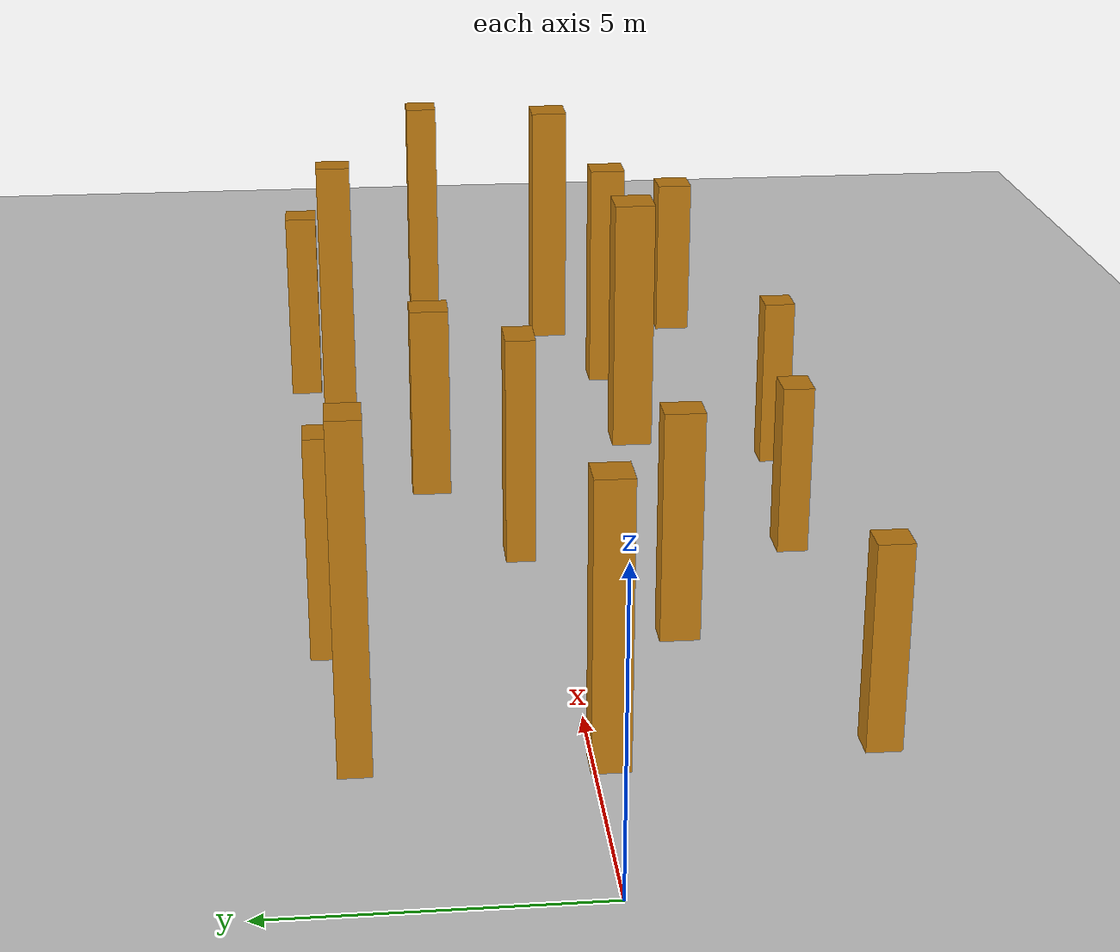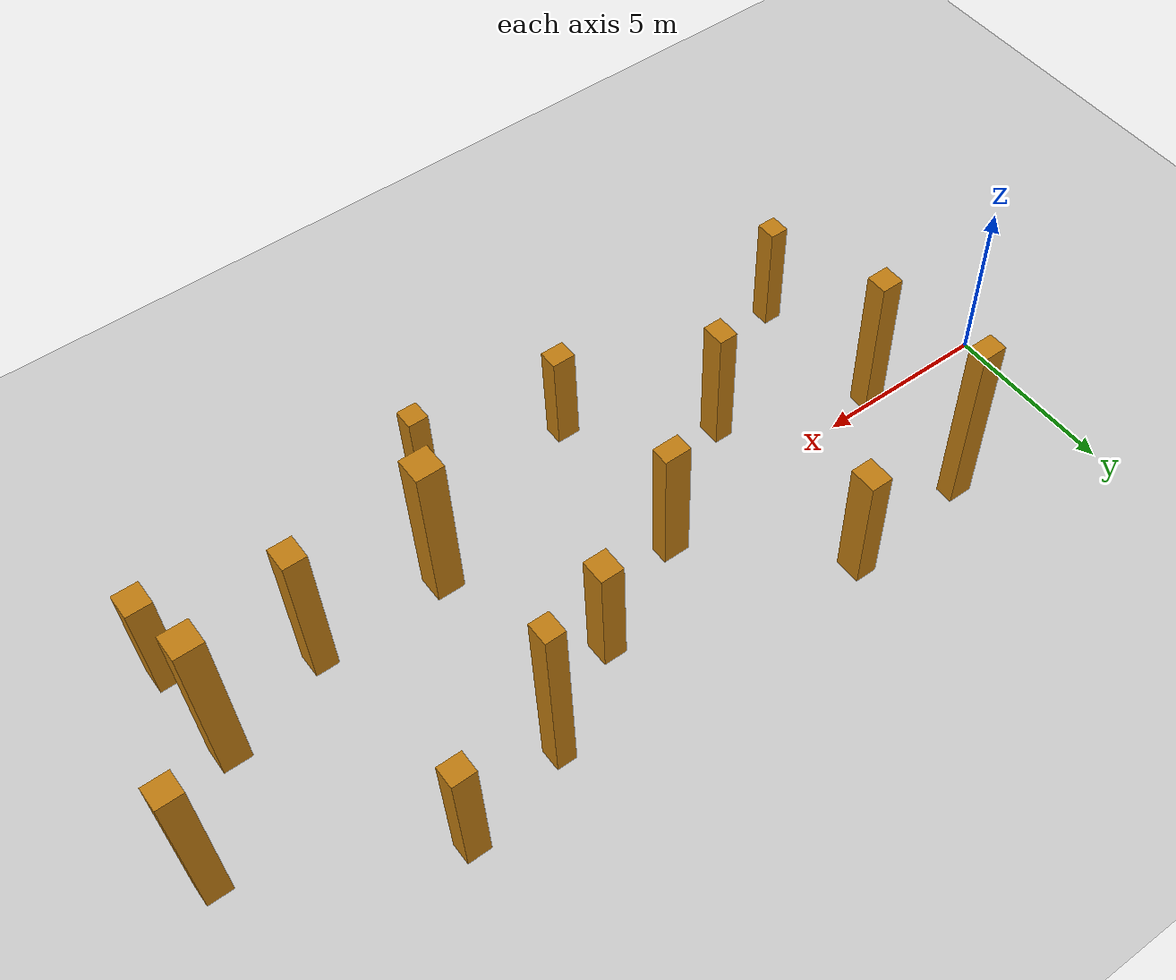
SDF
<sdf version="1.7">
 <world name="default">
  <light name="sun" type="directional">
   <pose>0 0 10 0 -0 0</pose>
   <diffuse>0.8 0.8 0.8 1</diffuse>
   <specular>0.2 0.2 0.2 1</specular>
   <attenuation>
    <range>1000</range>
    <constant>0.9</constant>
    <linear>0.01</linear>
    <quadratic>0.001</quadratic>
   </attenuation>
   <direction>-0.5 0.1 -0.9</direction>
   <spot><inner_angle>0</inner_angle><outer_angle>0</outer_angle><falloff>0</falloff></spot>
  </light>
  <model name="ground_plane">
   <static>1</static>
   <link name="link">
    <collision name="collision">
     <geometry><plane><normal>0 0 1</normal><size>100 100</size></plane></geometry>
     <surface>
      <contact><collide_bitmask>65535</collide_bitmask></contact>
      <friction><ode><mu>100</mu><mu2>50</mu2></ode></friction>
     </surface>
    </collision>
    <visual name="visual">
     <cast_shadows>0</cast_shadows>
     <geometry><plane><normal>0 0 1</normal><size>100 100</size></plane></geometry>
     <material>
      <script><uri>file://media/materials/scripts/gazebo.material</uri><name>Gazebo/Grey</name></script>
     </material>
    </visual>
   </link>
  </model>
  <gravity>0 0 -9.8</gravity>
  <magnetic_field>6e-06 2.3e-05 -4.2e-05</magnetic_field>
  <atmosphere type="adiabatic"/>
  <physics type="ode">
   <max_step_size>0.001</max_step_size>
   <real_time_factor>1</real_time_factor>
   <real_time_update_rate>1000</real_time_update_rate>
  </physics>
  <scene><ambient>0.4 0.4 0.4 1</ambient><background>0.7 0.7 0.7 1</background><shadows>1</shadows></scene>
  <spherical_coordinates>
   <surface_model>EARTH_WGS84</surface_model>
   <latitude_deg>0</latitude_deg>
   <longitude_deg>0</longitude_deg>
   <elevation>0</elevation>
   <heading_deg>0</heading_deg>
  </spherical_coordinates>
  <plugin name="gazebo_octomap" filename="libBuildOctomapPlugin.so"/>
  <model name="model0">
   <link name="link">
    <inertial>
     <mass>1</mass>
     <inertia>
      <ixx>0.166667</ixx>
      <ixy>0</ixy>
      <ixz>0</ixz>
      <iyy>0.166667</iyy>
      <iyz>0</iyz>
      <izz>0.166667</izz>
     </inertia>
    </inertial>
    <visual name="visual">
     <geometry><box><size>0.5413186644177945 0.6806908127863589 4.045240389018</size></box></geometry>
     <material>
      <script><name>Gazebo/Grey</name><uri>file://media/materials/scripts/gazebo.material</uri></script>
      <shader type="pixel"><normal_map>__default__</normal_map></shader>
      <ambient>0.757 0.49 0.067 1</ambient>
      <diffuse>0.7 0.7 0.7 1</diffuse>
      <specular>0.01 0.01 0.01 1</specular>
      <emissive>0 0 0 1</emissive>
     </material>
    </visual>
    <collision name="collision">
     <geometry><box><size>0.5413186644177945 0.6806908127863589 4.045240389018</size></box></geometry>
     <surface>
      <friction>
       <ode><mu>1</mu><mu2>1</mu2><fdir1>0 0 0</fdir1><slip1>0</slip1><slip2>0</slip2></ode>
       <torsional>
        <coefficient>1</coefficient>
        <patch_radius>0</patch_radius>
        <surface_radius>0</surface_radius>
        <use_patch_radius>1</use_patch_radius>
        <ode><slip>0</slip></ode>
       </torsional>
      </friction>
      <bounce><restitution_coefficient>0</restitution_coefficient><threshold>1e+06</threshold></bounce>
      <contact>
       <collide_without_contact>0</collide_without_contact>
       <collide_without_contact_bitmask>1</collide_without_contact_bitmask>
       <collide_bitmask>1</collide_bitmask>
       <ode>
        <soft_cfm>0</soft_cfm>
        <soft_erp>0.2</soft_erp>
        <kp>1e+13</kp>
        <kd>1</kd>
        <max_vel>0.01</max_vel>
        <min_depth>0</min_depth>
       </ode>
       <bullet>
        <split_impulse>1</split_impulse>
        <split_impulse_penetration_threshold>-0.01</split_impulse_penetration_threshold>
        <soft_cfm>0</soft_cfm>
        <soft_erp>0.2</soft_erp>
        <kp>1e+13</kp>
        <kd>1</kd>
       </bullet>
      </contact>
     </surface>
    </collision>
   </link>
   <static>0</static>
   <pose>7.636801785307956 -1.8812816014844325 2.022620194509 0.0 0.0 0.0</pose>
  </model>
  <model name="model1">
   <link name="link">
    <inertial>
     <mass>1</mass>
     <inertia>
      <ixx>0.166667</ixx>
      <ixy>0</ixy>
      <ixz>0</ixz>
      <iyy>0.166667</iyy>
      <iyz>0</iyz>
      <izz>0.166667</izz>
     </inertia>
    </inertial>
    <visual name="visual">
     <geometry><box><size>0.6609942166343876 0.7114339799958076 4.678055544154564</size></box></geometry>
     <material>
      <script><name>Gazebo/Grey</name><uri>file://media/materials/scripts/gazebo.material</uri></script>
      <shader type="pixel"><normal_map>__default__</normal_map></shader>
      <ambient>0.757 0.49 0.067 1</ambient>
      <diffuse>0.7 0.7 0.7 1</diffuse>
      <specular>0.01 0.01 0.01 1</specular>
      <emissive>0 0 0 1</emissive>
     </material>
    </visual>
    <collision name="collision">
     <geometry><box><size>0.6609942166343876 0.7114339799958076 4.678055544154564</size></box></geometry>
     <surface>
      <friction>
       <ode><mu>1</mu><mu2>1</mu2><fdir1>0 0 0</fdir1><slip1>0</slip1><slip2>0</slip2></ode>
       <torsional>
        <coefficient>1</coefficient>
        <patch_radius>0</patch_radius>
        <surface_radius>0</surface_radius>
        <use_patch_radius>1</use_patch_radius>
        <ode><slip>0</slip></ode>
       </torsional>
      </friction>
      <bounce><restitution_coefficient>0</restitution_coefficient><threshold>1e+06</threshold></bounce>
      <contact>
       <collide_without_contact>0</collide_without_contact>
       <collide_without_contact_bitmask>1</collide_without_contact_bitmask>
       <collide_bitmask>1</collide_bitmask>
       <ode>
        <soft_cfm>0</soft_cfm>
        <soft_erp>0.2</soft_erp>
        <kp>1e+13</kp>
        <kd>1</kd>
        <max_vel>0.01</max_vel>
        <min_depth>0</min_depth>
       </ode>
       <bullet>
        <split_impulse>1</split_impulse>
        <split_impulse_penetration_threshold>-0.01</split_impulse_penetration_threshold>
        <soft_cfm>0</soft_cfm>
        <soft_erp>0.2</soft_erp>
        <kp>1e+13</kp>
        <kd>1</kd>
       </bullet>
      </contact>
     </surface>
    </collision>
   </link>
   <static>0</static>
   <pose>20.017672413040636 -2.1298050413349134 2.339027772077282 0.0 0.0 0.0</pose>
  </model>
  <model name="model2">
   <link name="link">
    <inertial>
     <mass>1</mass>
     <inertia>
      <ixx>0.166667</ixx>
      <ixy>0</ixy>
      <ixz>0</ixz>
      <iyy>0.166667</iyy>
      <iyz>0</iyz>
      <izz>0.166667</izz>
     </inertia>
    </inertial>
    <visual name="visual">
     <geometry><box><size>0.5720434221305088 0.5808723309932609 3.274546043499368</size></box></geometry>
     <material>
      <script><name>Gazebo/Grey</name><uri>file://media/materials/scripts/gazebo.material</uri></script>
      <shader type="pixel"><normal_map>__default__</normal_map></shader>
      <ambient>0.757 0.49 0.067 1</ambient>
      <diffuse>0.7 0.7 0.7 1</diffuse>
      <specular>0.01 0.01 0.01 1</specular>
      <emissive>0 0 0 1</emissive>
     </material>
    </visual>
    <collision name="collision">
     <geometry><box><size>0.5720434221305088 0.5808723309932609 3.274546043499368</size></box></geometry>
     <surface>
      <friction>
       <ode><mu>1</mu><mu2>1</mu2><fdir1>0 0 0</fdir1><slip1>0</slip1><slip2>0</slip2></ode>
       <torsional>
        <coefficient>1</coefficient>
        <patch_radius>0</patch_radius>
        <surface_radius>0</surface_radius>
        <use_patch_radius>1</use_patch_radius>
        <ode><slip>0</slip></ode>
       </torsional>
      </friction>
      <bounce><restitution_coefficient>0</restitution_coefficient><threshold>1e+06</threshold></bounce>
      <contact>
       <collide_without_contact>0</collide_without_contact>
       <collide_without_contact_bitmask>1</collide_without_contact_bitmask>
       <collide_bitmask>1</collide_bitmask>
       <ode>
        <soft_cfm>0</soft_cfm>
        <soft_erp>0.2</soft_erp>
        <kp>1e+13</kp>
        <kd>1</kd>
        <max_vel>0.01</max_vel>
        <min_depth>0</min_depth>
       </ode>
       <bullet>
        <split_impulse>1</split_impulse>
        <split_impulse_penetration_threshold>-0.01</split_impulse_penetration_threshold>
        <soft_cfm>0</soft_cfm>
        <soft_erp>0.2</soft_erp>
        <kp>1e+13</kp>
        <kd>1</kd>
       </bullet>
      </contact>
     </surface>
    </collision>
   </link>
   <static>0</static>
   <pose>15.107402392266678 -4.906412118119991 1.637273021749684 0.0 0.0 0.0</pose>
  </model>
  <model name="model3">
   <link name="link">
    <inertial>
     <mass>1</mass>
     <inertia>
      <ixx>0.166667</ixx>
      <ixy>0</ixy>
      <ixz>0</ixz>
      <iyy>0.166667</iyy>
      <iyz>0</iyz>
      <izz>0.166667</izz>
     </inertia>
    </inertial>
    <visual name="visual">
     <geometry><box><size>0.6708192028838414 0.5576836232366673 3.1343124077374678</size></box></geometry>
     <material>
      <script><name>Gazebo/Grey</name><uri>file://media/materials/scripts/gazebo.material</uri></script>
      <shader type="pixel"><normal_map>__default__</normal_map></shader>
      <ambient>0.757 0.49 0.067 1</ambient>
      <diffuse>0.7 0.7 0.7 1</diffuse>
      <specular>0.01 0.01 0.01 1</specular>
      <emissive>0 0 0 1</emissive>
     </material>
    </visual>
    <collision name="collision">
     <geometry><box><size>0.6708192028838414 0.5576836232366673 3.1343124077374678</size></box></geometry>
     <surface>
      <friction>
       <ode><mu>1</mu><mu2>1</mu2><fdir1>0 0 0</fdir1><slip1>0</slip1><slip2>0</slip2></ode>
       <torsional>
        <coefficient>1</coefficient>
        <patch_radius>0</patch_radius>
        <surface_radius>0</surface_radius>
        <use_patch_radius>1</use_patch_radius>
        <ode><slip>0</slip></ode>
       </torsional>
      </friction>
      <bounce><restitution_coefficient>0</restitution_coefficient><threshold>1e+06</threshold></bounce>
      <contact>
       <collide_without_contact>0</collide_without_contact>
       <collide_without_contact_bitmask>1</collide_without_contact_bitmask>
       <collide_bitmask>1</collide_bitmask>
       <ode>
        <soft_cfm>0</soft_cfm>
        <soft_erp>0.2</soft_erp>
        <kp>1e+13</kp>
        <kd>1</kd>
        <max_vel>0.01</max_vel>
        <min_depth>0</min_depth>
       </ode>
       <bullet>
        <split_impulse>1</split_impulse>
        <split_impulse_penetration_threshold>-0.01</split_impulse_penetration_threshold>
        <soft_cfm>0</soft_cfm>
        <soft_erp>0.2</soft_erp>
        <kp>1e+13</kp>
        <kd>1</kd>
       </bullet>
      </contact>
     </surface>
    </collision>
   </link>
   <static>0</static>
   <pose>10.96778164657982 -4.431210429715095 1.5671562038687339 0.0 0.0 0.0</pose>
  </model>
  <model name="model4">
   <link name="link">
    <inertial>
     <mass>1</mass>
     <inertia>
      <ixx>0.166667</ixx>
      <ixy>0</ixy>
      <ixz>0</ixz>
      <iyy>0.166667</iyy>
      <iyz>0</iyz>
      <izz>0.166667</izz>
     </inertia>
    </inertial>
    <visual name="visual">
     <geometry><box><size>0.6985149968707249 0.529175632266917 5.667273699548543</size></box></geometry>
     <material>
      <script><name>Gazebo/Grey</name><uri>file://media/materials/scripts/gazebo.material</uri></script>
      <shader type="pixel"><normal_map>__default__</normal_map></shader>
      <ambient>0.757 0.49 0.067 1</ambient>
      <diffuse>0.7 0.7 0.7 1</diffuse>
      <specular>0.01 0.01 0.01 1</specular>
      <emissive>0 0 0 1</emissive>
     </material>
    </visual>
    <collision name="collision">
     <geometry><box><size>0.6985149968707249 0.529175632266917 5.667273699548543</size></box></geometry>
     <surface>
      <friction>
       <ode><mu>1</mu><mu2>1</mu2><fdir1>0 0 0</fdir1><slip1>0</slip1><slip2>0</slip2></ode>
       <torsional>
        <coefficient>1</coefficient>
        <patch_radius>0</patch_radius>
        <surface_radius>0</surface_radius>
        <use_patch_radius>1</use_patch_radius>
        <ode><slip>0</slip></ode>
       </torsional>
      </friction>
      <bounce><restitution_coefficient>0</restitution_coefficient><threshold>1e+06</threshold></bounce>
      <contact>
       <collide_without_contact>0</collide_without_contact>
       <collide_without_contact_bitmask>1</collide_without_contact_bitmask>
       <collide_bitmask>1</collide_bitmask>
       <ode>
        <soft_cfm>0</soft_cfm>
        <soft_erp>0.2</soft_erp>
        <kp>1e+13</kp>
        <kd>1</kd>
        <max_vel>0.01</max_vel>
        <min_depth>0</min_depth>
       </ode>
       <bullet>
        <split_impulse>1</split_impulse>
        <split_impulse_penetration_threshold>-0.01</split_impulse_penetration_threshold>
        <soft_cfm>0</soft_cfm>
        <soft_erp>0.2</soft_erp>
        <kp>1e+13</kp>
        <kd>1</kd>
       </bullet>
      </contact>
     </surface>
    </collision>
   </link>
   <static>0</static>
   <pose>3.841803896338507 3.543169966341557 2.8336368497742717 0.0 0.0 0.0</pose>
  </model>
  <model name="model5">
   <link name="link">
    <inertial>
     <mass>1</mass>
     <inertia>
      <ixx>0.166667</ixx>
      <ixy>0</ixy>
      <ixz>0</ixz>
      <iyy>0.166667</iyy>
      <iyz>0</iyz>
      <izz>0.166667</izz>
     </inertia>
    </inertial>
    <visual name="visual">
     <geometry><box><size>0.6663495773236268 0.7262466717717364 3.683834411352261</size></box></geometry>
     <material>
      <script><name>Gazebo/Grey</name><uri>file://media/materials/scripts/gazebo.material</uri></script>
      <shader type="pixel"><normal_map>__default__</normal_map></shader>
      <ambient>0.757 0.49 0.067 1</ambient>
      <diffuse>0.7 0.7 0.7 1</diffuse>
      <specular>0.01 0.01 0.01 1</specular>
      <emissive>0 0 0 1</emissive>
     </material>
    </visual>
    <collision name="collision">
     <geometry><box><size>0.6663495773236268 0.7262466717717364 3.683834411352261</size></box></geometry>
     <surface>
      <friction>
       <ode><mu>1</mu><mu2>1</mu2><fdir1>0 0 0</fdir1><slip1>0</slip1><slip2>0</slip2></ode>
       <torsional>
        <coefficient>1</coefficient>
        <patch_radius>0</patch_radius>
        <surface_radius>0</surface_radius>
        <use_patch_radius>1</use_patch_radius>
        <ode><slip>0</slip></ode>
       </torsional>
      </friction>
      <bounce><restitution_coefficient>0</restitution_coefficient><threshold>1e+06</threshold></bounce>
      <contact>
       <collide_without_contact>0</collide_without_contact>
       <collide_without_contact_bitmask>1</collide_without_contact_bitmask>
       <collide_bitmask>1</collide_bitmask>
       <ode>
        <soft_cfm>0</soft_cfm>
        <soft_erp>0.2</soft_erp>
        <kp>1e+13</kp>
        <kd>1</kd>
        <max_vel>0.01</max_vel>
        <min_depth>0</min_depth>
       </ode>
       <bullet>
        <split_impulse>1</split_impulse>
        <split_impulse_penetration_threshold>-0.01</split_impulse_penetration_threshold>
        <soft_cfm>0</soft_cfm>
        <soft_erp>0.2</soft_erp>
        <kp>1e+13</kp>
        <kd>1</kd>
       </bullet>
      </contact>
     </surface>
    </collision>
   </link>
   <static>0</static>
   <pose>14.152163421730165 1.9255591821279285 1.8419172056761306 0.0 0.0 0.0</pose>
  </model>
  <model name="model6">
   <link name="link">
    <inertial>
     <mass>1</mass>
     <inertia>
      <ixx>0.166667</ixx>
      <ixy>0</ixy>
      <ixz>0</ixz>
      <iyy>0.166667</iyy>
      <iyz>0</iyz>
      <izz>0.166667</izz>
     </inertia>
    </inertial>
    <visual name="visual">
     <geometry><box><size>0.7078755981404992 0.6651884453455696 4.880756601264045</size></box></geometry>
     <material>
      <script><name>Gazebo/Grey</name><uri>file://media/materials/scripts/gazebo.material</uri></script>
      <shader type="pixel"><normal_map>__default__</normal_map></shader>
      <ambient>0.757 0.49 0.067 1</ambient>
      <diffuse>0.7 0.7 0.7 1</diffuse>
      <specular>0.01 0.01 0.01 1</specular>
      <emissive>0 0 0 1</emissive>
     </material>
    </visual>
    <collision name="collision">
     <geometry><box><size>0.7078755981404992 0.6651884453455696 4.880756601264045</size></box></geometry>
     <surface>
      <friction>
       <ode><mu>1</mu><mu2>1</mu2><fdir1>0 0 0</fdir1><slip1>0</slip1><slip2>0</slip2></ode>
       <torsional>
        <coefficient>1</coefficient>
        <patch_radius>0</patch_radius>
        <surface_radius>0</surface_radius>
        <use_patch_radius>1</use_patch_radius>
        <ode><slip>0</slip></ode>
       </torsional>
      </friction>
      <bounce><restitution_coefficient>0</restitution_coefficient><threshold>1e+06</threshold></bounce>
      <contact>
       <collide_without_contact>0</collide_without_contact>
       <collide_without_contact_bitmask>1</collide_without_contact_bitmask>
       <collide_bitmask>1</collide_bitmask>
       <ode>
        <soft_cfm>0</soft_cfm>
        <soft_erp>0.2</soft_erp>
        <kp>1e+13</kp>
        <kd>1</kd>
        <max_vel>0.01</max_vel>
        <min_depth>0</min_depth>
       </ode>
       <bullet>
        <split_impulse>1</split_impulse>
        <split_impulse_penetration_threshold>-0.01</split_impulse_penetration_threshold>
        <soft_cfm>0</soft_cfm>
        <soft_erp>0.2</soft_erp>
        <kp>1e+13</kp>
        <kd>1</kd>
       </bullet>
      </contact>
     </surface>
    </collision>
   </link>
   <static>0</static>
   <pose>25.02822167508521 1.591251131796767 2.4403783006320223 0.0 0.0 0.0</pose>
  </model>
  <model name="model7">
   <link name="link">
    <inertial>
     <mass>1</mass>
     <inertia>
      <ixx>0.166667</ixx>
      <ixy>0</ixy>
      <ixz>0</ixz>
      <iyy>0.166667</iyy>
      <iyz>0</iyz>
      <izz>0.166667</izz>
     </inertia>
    </inertial>
    <visual name="visual">
     <geometry><box><size>0.7251205967353784 0.739982085291362 3.4132364792786936</size></box></geometry>
     <material>
      <script><name>Gazebo/Grey</name><uri>file://media/materials/scripts/gazebo.material</uri></script>
      <shader type="pixel"><normal_map>__default__</normal_map></shader>
      <ambient>0.757 0.49 0.067 1</ambient>
      <diffuse>0.7 0.7 0.7 1</diffuse>
      <specular>0.01 0.01 0.01 1</specular>
      <emissive>0 0 0 1</emissive>
     </material>
    </visual>
    <collision name="collision">
     <geometry><box><size>0.7251205967353784 0.739982085291362 3.4132364792786936</size></box></geometry>
     <surface>
      <friction>
       <ode><mu>1</mu><mu2>1</mu2><fdir1>0 0 0</fdir1><slip1>0</slip1><slip2>0</slip2></ode>
       <torsional>
        <coefficient>1</coefficient>
        <patch_radius>0</patch_radius>
        <surface_radius>0</surface_radius>
        <use_patch_radius>1</use_patch_radius>
        <ode><slip>0</slip></ode>
       </torsional>
      </friction>
      <bounce><restitution_coefficient>0</restitution_coefficient><threshold>1e+06</threshold></bounce>
      <contact>
       <collide_without_contact>0</collide_without_contact>
       <collide_without_contact_bitmask>1</collide_without_contact_bitmask>
       <collide_bitmask>1</collide_bitmask>
       <ode>
        <soft_cfm>0</soft_cfm>
        <soft_erp>0.2</soft_erp>
        <kp>1e+13</kp>
        <kd>1</kd>
        <max_vel>0.01</max_vel>
        <min_depth>0</min_depth>
       </ode>
       <bullet>
        <split_impulse>1</split_impulse>
        <split_impulse_penetration_threshold>-0.01</split_impulse_penetration_threshold>
        <soft_cfm>0</soft_cfm>
        <soft_erp>0.2</soft_erp>
        <kp>1e+13</kp>
        <kd>1</kd>
       </bullet>
      </contact>
     </surface>
    </collision>
   </link>
   <static>0</static>
   <pose>23.269598670749026 -4.067846133490462 1.7066182396393468 0.0 0.0 0.0</pose>
  </model>
  <model name="model8">
   <link name="link">
    <inertial>
     <mass>1</mass>
     <inertia>
      <ixx>0.166667</ixx>
      <ixy>0</ixy>
      <ixz>0</ixz>
      <iyy>0.166667</iyy>
      <iyz>0</iyz>
      <izz>0.166667</izz>
     </inertia>
    </inertial>
    <visual name="visual">
     <geometry><box><size>0.7910762717875095 0.7613698184641938 5.211861188277944</size></box></geometry>
     <material>
      <script><name>Gazebo/Grey</name><uri>file://media/materials/scripts/gazebo.material</uri></script>
      <shader type="pixel"><normal_map>__default__</normal_map></shader>
      <ambient>0.757 0.49 0.067 1</ambient>
      <diffuse>0.7 0.7 0.7 1</diffuse>
      <specular>0.01 0.01 0.01 1</specular>
      <emissive>0 0 0 1</emissive>
     </material>
    </visual>
    <collision name="collision">
     <geometry><box><size>0.7910762717875095 0.7613698184641938 5.211861188277944</size></box></geometry>
     <surface>
      <friction>
       <ode><mu>1</mu><mu2>1</mu2><fdir1>0 0 0</fdir1><slip1>0</slip1><slip2>0</slip2></ode>
       <torsional>
        <coefficient>1</coefficient>
        <patch_radius>0</patch_radius>
        <surface_radius>0</surface_radius>
        <use_patch_radius>1</use_patch_radius>
        <ode><slip>0</slip></ode>
       </torsional>
      </friction>
      <bounce><restitution_coefficient>0</restitution_coefficient><threshold>1e+06</threshold></bounce>
      <contact>
       <collide_without_contact>0</collide_without_contact>
       <collide_without_contact_bitmask>1</collide_without_contact_bitmask>
       <collide_bitmask>1</collide_bitmask>
       <ode>
        <soft_cfm>0</soft_cfm>
        <soft_erp>0.2</soft_erp>
        <kp>1e+13</kp>
        <kd>1</kd>
        <max_vel>0.01</max_vel>
        <min_depth>0</min_depth>
       </ode>
       <bullet>
        <split_impulse>1</split_impulse>
        <split_impulse_penetration_threshold>-0.01</split_impulse_penetration_threshold>
        <soft_cfm>0</soft_cfm>
        <soft_erp>0.2</soft_erp>
        <kp>1e+13</kp>
        <kd>1</kd>
       </bullet>
      </contact>
     </surface>
    </collision>
   </link>
   <static>0</static>
   <pose>23.063770445937948 -1.1744663383816123 2.605930594138972 0.0 0.0 0.0</pose>
  </model>
  <model name="model9">
   <link name="link">
    <inertial>
     <mass>1</mass>
     <inertia>
      <ixx>0.166667</ixx>
      <ixy>0</ixy>
      <ixz>0</ixz>
      <iyy>0.166667</iyy>
      <iyz>0</iyz>
      <izz>0.166667</izz>
     </inertia>
    </inertial>
    <visual name="visual">
     <geometry><box><size>0.6712711026777625 0.6179015654670115 3.8694424780084837</size></box></geometry>
     <material>
      <script><name>Gazebo/Grey</name><uri>file://media/materials/scripts/gazebo.material</uri></script>
      <shader type="pixel"><normal_map>__default__</normal_map></shader>
      <ambient>0.757 0.49 0.067 1</ambient>
      <diffuse>0.7 0.7 0.7 1</diffuse>
      <specular>0.01 0.01 0.01 1</specular>
      <emissive>0 0 0 1</emissive>
     </material>
    </visual>
    <collision name="collision">
     <geometry><box><size>0.6712711026777625 0.6179015654670115 3.8694424780084837</size></box></geometry>
     <surface>
      <friction>
       <ode><mu>1</mu><mu2>1</mu2><fdir1>0 0 0</fdir1><slip1>0</slip1><slip2>0</slip2></ode>
       <torsional>
        <coefficient>1</coefficient>
        <patch_radius>0</patch_radius>
        <surface_radius>0</surface_radius>
        <use_patch_radius>1</use_patch_radius>
        <ode><slip>0</slip></ode>
       </torsional>
      </friction>
      <bounce><restitution_coefficient>0</restitution_coefficient><threshold>1e+06</threshold></bounce>
      <contact>
       <collide_without_contact>0</collide_without_contact>
       <collide_without_contact_bitmask>1</collide_without_contact_bitmask>
       <collide_bitmask>1</collide_bitmask>
       <ode>
        <soft_cfm>0</soft_cfm>
        <soft_erp>0.2</soft_erp>
        <kp>1e+13</kp>
        <kd>1</kd>
        <max_vel>0.01</max_vel>
        <min_depth>0</min_depth>
       </ode>
       <bullet>
        <split_impulse>1</split_impulse>
        <split_impulse_penetration_threshold>-0.01</split_impulse_penetration_threshold>
        <soft_cfm>0</soft_cfm>
        <soft_erp>0.2</soft_erp>
        <kp>1e+13</kp>
        <kd>1</kd>
       </bullet>
      </contact>
     </surface>
    </collision>
   </link>
   <static>0</static>
   <pose>19.7919379212153 4.34021315729658 1.9347212390042419 0.0 0.0 0.0</pose>
  </model>
  <model name="model10">
   <link name="link">
    <inertial>
     <mass>1</mass>
     <inertia>
      <ixx>0.166667</ixx>
      <ixy>0</ixy>
      <ixz>0</ixz>
      <iyy>0.166667</iyy>
      <iyz>0</iyz>
      <izz>0.166667</izz>
     </inertia>
    </inertial>
    <visual name="visual">
     <geometry><box><size>0.6245788750198641 0.7713370292114904 3.8856666714137917</size></box></geometry>
     <material>
      <script><name>Gazebo/Grey</name><uri>file://media/materials/scripts/gazebo.material</uri></script>
      <shader type="pixel"><normal_map>__default__</normal_map></shader>
      <ambient>0.757 0.49 0.067 1</ambient>
      <diffuse>0.7 0.7 0.7 1</diffuse>
      <specular>0.01 0.01 0.01 1</specular>
      <emissive>0 0 0 1</emissive>
     </material>
    </visual>
    <collision name="collision">
     <geometry><box><size>0.6245788750198641 0.7713370292114904 3.8856666714137917</size></box></geometry>
     <surface>
      <friction>
       <ode><mu>1</mu><mu2>1</mu2><fdir1>0 0 0</fdir1><slip1>0</slip1><slip2>0</slip2></ode>
       <torsional>
        <coefficient>1</coefficient>
        <patch_radius>0</patch_radius>
        <surface_radius>0</surface_radius>
        <use_patch_radius>1</use_patch_radius>
        <ode><slip>0</slip></ode>
       </torsional>
      </friction>
      <bounce><restitution_coefficient>0</restitution_coefficient><threshold>1e+06</threshold></bounce>
      <contact>
       <collide_without_contact>0</collide_without_contact>
       <collide_without_contact_bitmask>1</collide_without_contact_bitmask>
       <collide_bitmask>1</collide_bitmask>
       <ode>
        <soft_cfm>0</soft_cfm>
        <soft_erp>0.2</soft_erp>
        <kp>1e+13</kp>
        <kd>1</kd>
        <max_vel>0.01</max_vel>
        <min_depth>0</min_depth>
       </ode>
       <bullet>
        <split_impulse>1</split_impulse>
        <split_impulse_penetration_threshold>-0.01</split_impulse_penetration_threshold>
        <soft_cfm>0</soft_cfm>
        <soft_erp>0.2</soft_erp>
        <kp>1e+13</kp>
        <kd>1</kd>
       </bullet>
      </contact>
     </surface>
    </collision>
   </link>
   <static>0</static>
   <pose>7.547060432557296 3.826615757520816 1.9428333357068959 0.0 0.0 0.0</pose>
  </model>
  <model name="model11">
   <link name="link">
    <inertial>
     <mass>1</mass>
     <inertia>
      <ixx>0.166667</ixx>
      <ixy>0</ixy>
      <ixz>0</ixz>
      <iyy>0.166667</iyy>
      <iyz>0</iyz>
      <izz>0.166667</izz>
     </inertia>
    </inertial>
    <visual name="visual">
     <geometry><box><size>0.5560740805813899 0.6403938728131899 5.732611476690648</size></box></geometry>
     <material>
      <script><name>Gazebo/Grey</name><uri>file://media/materials/scripts/gazebo.material</uri></script>
      <shader type="pixel"><normal_map>__default__</normal_map></shader>
      <ambient>0.757 0.49 0.067 1</ambient>
      <diffuse>0.7 0.7 0.7 1</diffuse>
      <specular>0.01 0.01 0.01 1</specular>
      <emissive>0 0 0 1</emissive>
     </material>
    </visual>
    <collision name="collision">
     <geometry><box><size>0.5560740805813899 0.6403938728131899 5.732611476690648</size></box></geometry>
     <surface>
      <friction>
       <ode><mu>1</mu><mu2>1</mu2><fdir1>0 0 0</fdir1><slip1>0</slip1><slip2>0</slip2></ode>
       <torsional>
        <coefficient>1</coefficient>
        <patch_radius>0</patch_radius>
        <surface_radius>0</surface_radius>
        <use_patch_radius>1</use_patch_radius>
        <ode><slip>0</slip></ode>
       </torsional>
      </friction>
      <bounce><restitution_coefficient>0</restitution_coefficient><threshold>1e+06</threshold></bounce>
      <contact>
       <collide_without_contact>0</collide_without_contact>
       <collide_without_contact_bitmask>1</collide_without_contact_bitmask>
       <collide_bitmask>1</collide_bitmask>
       <ode>
        <soft_cfm>0</soft_cfm>
        <soft_erp>0.2</soft_erp>
        <kp>1e+13</kp>
        <kd>1</kd>
        <max_vel>0.01</max_vel>
        <min_depth>0</min_depth>
       </ode>
       <bullet>
        <split_impulse>1</split_impulse>
        <split_impulse_penetration_threshold>-0.01</split_impulse_penetration_threshold>
        <soft_cfm>0</soft_cfm>
        <soft_erp>0.2</soft_erp>
        <kp>1e+13</kp>
        <kd>1</kd>
       </bullet>
      </contact>
     </surface>
    </collision>
   </link>
   <static>0</static>
   <pose>16.81928780648959 3.6244441205326616 2.866305738345324 0.0 0.0 0.0</pose>
  </model>
  <model name="model12">
   <link name="link">
    <inertial>
     <mass>1</mass>
     <inertia>
      <ixx>0.166667</ixx>
      <ixy>0</ixy>
      <ixz>0</ixz>
      <iyy>0.166667</iyy>
      <iyz>0</iyz>
      <izz>0.166667</izz>
     </inertia>
    </inertial>
    <visual name="visual">
     <geometry><box><size>0.773114744937796 0.5350948604364685 4.190514157248166</size></box></geometry>
     <material>
      <script><name>Gazebo/Grey</name><uri>file://media/materials/scripts/gazebo.material</uri></script>
      <shader type="pixel"><normal_map>__default__</normal_map></shader>
      <ambient>0.757 0.49 0.067 1</ambient>
      <diffuse>0.7 0.7 0.7 1</diffuse>
      <specular>0.01 0.01 0.01 1</specular>
      <emissive>0 0 0 1</emissive>
     </material>
    </visual>
    <collision name="collision">
     <geometry><box><size>0.773114744937796 0.5350948604364685 4.190514157248166</size></box></geometry>
     <surface>
      <friction>
       <ode><mu>1</mu><mu2>1</mu2><fdir1>0 0 0</fdir1><slip1>0</slip1><slip2>0</slip2></ode>
       <torsional>
        <coefficient>1</coefficient>
        <patch_radius>0</patch_radius>
        <surface_radius>0</surface_radius>
        <use_patch_radius>1</use_patch_radius>
        <ode><slip>0</slip></ode>
       </torsional>
      </friction>
      <bounce><restitution_coefficient>0</restitution_coefficient><threshold>1e+06</threshold></bounce>
      <contact>
       <collide_without_contact>0</collide_without_contact>
       <collide_without_contact_bitmask>1</collide_without_contact_bitmask>
       <collide_bitmask>1</collide_bitmask>
       <ode>
        <soft_cfm>0</soft_cfm>
        <soft_erp>0.2</soft_erp>
        <kp>1e+13</kp>
        <kd>1</kd>
        <max_vel>0.01</max_vel>
        <min_depth>0</min_depth>
       </ode>
       <bullet>
        <split_impulse>1</split_impulse>
        <split_impulse_penetration_threshold>-0.01</split_impulse_penetration_threshold>
        <soft_cfm>0</soft_cfm>
        <soft_erp>0.2</soft_erp>
        <kp>1e+13</kp>
        <kd>1</kd>
       </bullet>
      </contact>
     </surface>
    </collision>
   </link>
   <static>0</static>
   <pose>11.037150240731453 0.4819136326284914 2.095257078624083 0.0 0.0 0.0</pose>
  </model>
  <model name="model13">
   <link name="link">
    <inertial>
     <mass>1</mass>
     <inertia>
      <ixx>0.166667</ixx>
      <ixy>0</ixy>
      <ixz>0</ixz>
      <iyy>0.166667</iyy>
      <iyz>0</iyz>
      <izz>0.166667</izz>
     </inertia>
    </inertial>
    <visual name="visual">
     <geometry><box><size>0.795620716005972 0.7865997950892332 4.999519050187552</size></box></geometry>
     <material>
      <script><name>Gazebo/Grey</name><uri>file://media/materials/scripts/gazebo.material</uri></script>
      <shader type="pixel"><normal_map>__default__</normal_map></shader>
      <ambient>0.757 0.49 0.067 1</ambient>
      <diffuse>0.7 0.7 0.7 1</diffuse>
      <specular>0.01 0.01 0.01 1</specular>
      <emissive>0 0 0 1</emissive>
     </material>
    </visual>
    <collision name="collision">
     <geometry><box><size>0.795620716005972 0.7865997950892332 4.999519050187552</size></box></geometry>
     <surface>
      <friction>
       <ode><mu>1</mu><mu2>1</mu2><fdir1>0 0 0</fdir1><slip1>0</slip1><slip2>0</slip2></ode>
       <torsional>
        <coefficient>1</coefficient>
        <patch_radius>0</patch_radius>
        <surface_radius>0</surface_radius>
        <use_patch_radius>1</use_patch_radius>
        <ode><slip>0</slip></ode>
       </torsional>
      </friction>
      <bounce><restitution_coefficient>0</restitution_coefficient><threshold>1e+06</threshold></bounce>
      <contact>
       <collide_without_contact>0</collide_without_contact>
       <collide_without_contact_bitmask>1</collide_without_contact_bitmask>
       <collide_bitmask>1</collide_bitmask>
       <ode>
        <soft_cfm>0</soft_cfm>
        <soft_erp>0.2</soft_erp>
        <kp>1e+13</kp>
        <kd>1</kd>
        <max_vel>0.01</max_vel>
        <min_depth>0</min_depth>
       </ode>
       <bullet>
        <split_impulse>1</split_impulse>
        <split_impulse_penetration_threshold>-0.01</split_impulse_penetration_threshold>
        <soft_cfm>0</soft_cfm>
        <soft_erp>0.2</soft_erp>
        <kp>1e+13</kp>
        <kd>1</kd>
       </bullet>
      </contact>
     </surface>
    </collision>
   </link>
   <static>0</static>
   <pose>16.326069768788475 -2.213119499439229 2.499759525093776 0.0 0.0 0.0</pose>
  </model>
  <model name="model14">
   <link name="link">
    <inertial>
     <mass>1</mass>
     <inertia>
      <ixx>0.166667</ixx>
      <ixy>0</ixy>
      <ixz>0</ixz>
      <iyy>0.166667</iyy>
      <iyz>0</iyz>
      <izz>0.166667</izz>
     </inertia>
    </inertial>
    <visual name="visual">
     <geometry><box><size>0.5270631788067064 0.5705401895744012 3.439977456288199</size></box></geometry>
     <material>
      <script><name>Gazebo/Grey</name><uri>file://media/materials/scripts/gazebo.material</uri></script>
      <shader type="pixel"><normal_map>__default__</normal_map></shader>
      <ambient>0.757 0.49 0.067 1</ambient>
      <diffuse>0.7 0.7 0.7 1</diffuse>
      <specular>0.01 0.01 0.01 1</specular>
      <emissive>0 0 0 1</emissive>
     </material>
    </visual>
    <collision name="collision">
     <geometry><box><size>0.5270631788067064 0.5705401895744012 3.439977456288199</size></box></geometry>
     <surface>
      <friction>
       <ode><mu>1</mu><mu2>1</mu2><fdir1>0 0 0</fdir1><slip1>0</slip1><slip2>0</slip2></ode>
       <torsional>
        <coefficient>1</coefficient>
        <patch_radius>0</patch_radius>
        <surface_radius>0</surface_radius>
        <use_patch_radius>1</use_patch_radius>
        <ode><slip>0</slip></ode>
       </torsional>
      </friction>
      <bounce><restitution_coefficient>0</restitution_coefficient><threshold>1e+06</threshold></bounce>
      <contact>
       <collide_without_contact>0</collide_without_contact>
       <collide_without_contact_bitmask>1</collide_without_contact_bitmask>
       <collide_bitmask>1</collide_bitmask>
       <ode>
        <soft_cfm>0</soft_cfm>
        <soft_erp>0.2</soft_erp>
        <kp>1e+13</kp>
        <kd>1</kd>
        <max_vel>0.01</max_vel>
        <min_depth>0</min_depth>
       </ode>
       <bullet>
        <split_impulse>1</split_impulse>
        <split_impulse_penetration_threshold>-0.01</split_impulse_penetration_threshold>
        <soft_cfm>0</soft_cfm>
        <soft_erp>0.2</soft_erp>
        <kp>1e+13</kp>
        <kd>1</kd>
       </bullet>
      </contact>
     </surface>
    </collision>
   </link>
   <static>0</static>
   <pose>3.7684815493761086 -4.392318005459291 1.7199887281440995 0.0 0.0 0.0</pose>
  </model>
  <model name="model15">
   <link name="link">
    <inertial>
     <mass>1</mass>
     <inertia>
      <ixx>0.166667</ixx>
      <ixy>0</ixy>
      <ixz>0</ixz>
      <iyy>0.166667</iyy>
      <iyz>0</iyz>
      <izz>0.166667</izz>
     </inertia>
    </inertial>
    <visual name="visual">
     <geometry><box><size>0.6321855648347281 0.6101744556157407 4.729209585282751</size></box></geometry>
     <material>
      <script><name>Gazebo/Grey</name><uri>file://media/materials/scripts/gazebo.material</uri></script>
      <shader type="pixel"><normal_map>__default__</normal_map></shader>
      <ambient>0.757 0.49 0.067 1</ambient>
      <diffuse>0.7 0.7 0.7 1</diffuse>
      <specular>0.01 0.01 0.01 1</specular>
      <emissive>0 0 0 1</emissive>
     </material>
    </visual>
    <collision name="collision">
     <geometry><box><size>0.6321855648347281 0.6101744556157407 4.729209585282751</size></box></geometry>
     <surface>
      <friction>
       <ode><mu>1</mu><mu2>1</mu2><fdir1>0 0 0</fdir1><slip1>0</slip1><slip2>0</slip2></ode>
       <torsional>
        <coefficient>1</coefficient>
        <patch_radius>0</patch_radius>
        <surface_radius>0</surface_radius>
        <use_patch_radius>1</use_patch_radius>
        <ode><slip>0</slip></ode>
       </torsional>
      </friction>
      <bounce><restitution_coefficient>0</restitution_coefficient><threshold>1e+06</threshold></bounce>
      <contact>
       <collide_without_contact>0</collide_without_contact>
       <collide_without_contact_bitmask>1</collide_without_contact_bitmask>
       <collide_bitmask>1</collide_bitmask>
       <ode>
        <soft_cfm>0</soft_cfm>
        <soft_erp>0.2</soft_erp>
        <kp>1e+13</kp>
        <kd>1</kd>
        <max_vel>0.01</max_vel>
        <min_depth>0</min_depth>
       </ode>
       <bullet>
        <split_impulse>1</split_impulse>
        <split_impulse_penetration_threshold>-0.01</split_impulse_penetration_threshold>
        <soft_cfm>0</soft_cfm>
        <soft_erp>0.2</soft_erp>
        <kp>1e+13</kp>
        <kd>1</kd>
       </bullet>
      </contact>
     </surface>
    </collision>
   </link>
   <static>0</static>
   <pose>3.59424858433803 -0.23247439124705238 2.3646047926413756 0.0 0.0 0.0</pose>
  </model>
 </world>
</sdf>
